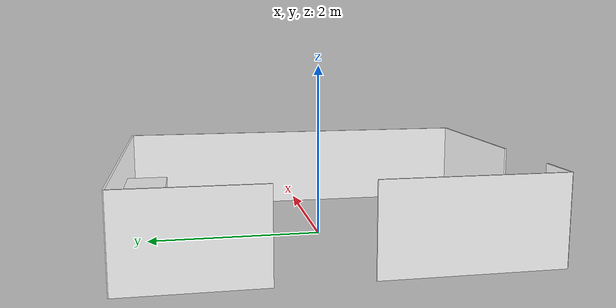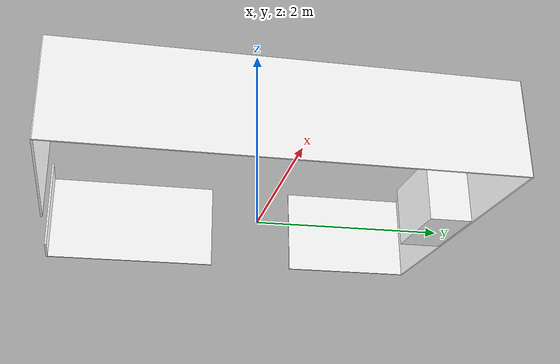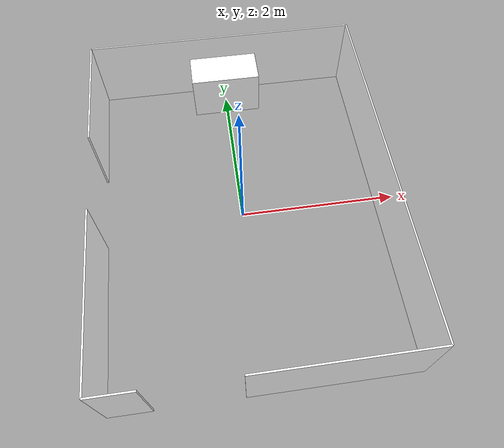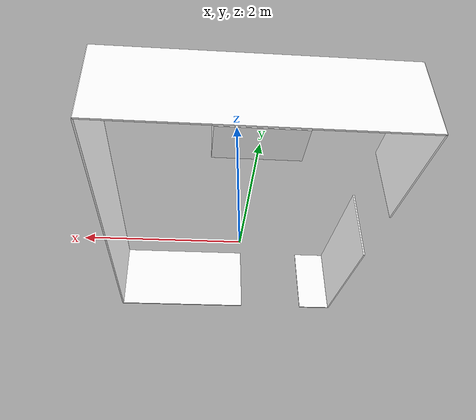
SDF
<sdf version="1.6">
    <model name="dining_room">
        <static>true</static>
        <!-- East wall -->
        <link name="east_wall">
            <pose>1.75 0 0.5 0 0 0</pose>
            <visual name="visual_east_wall">
                <geometry>
                    <box>
                        <size>0.02 4.5 1.0</size>
                    </box>
                </geometry>
                <material>
                    <ambient>1 1 1 1</ambient> <!-- White color, fully opaque -->
                </material>
            </visual>
            <collision name="collision_east_wall">
                <geometry>
                    <box>
                        <size>0.02 4.5 1.0</size>
                    </box>
                </geometry>
            </collision>
        </link>

        <!-- North wall -->
        <link name="north_wall">
            <pose>0 2.25 0.5 0 0 0</pose>
            <visual name="visual_north_wall">
                <geometry>
                    <box>
                        <size>3.5 0.02 1.0</size>
                    </box>
                </geometry>
                <material>
                    <ambient>1 1 1 1</ambient>
                </material>
            </visual>
            <collision name="collision_north_wall">
                <geometry>
                    <box>
                        <size>3.5 0.02 1.0</size>
                    </box>
                </geometry>
            </collision>
        </link>

        <!-- South wall 1 -->
        <link name="south_wall_1">
            <pose>0.75 -2.25 0.5 0 0 0</pose>
            <visual name="visual_south_wall_1">
                <geometry>
                    <box>
                        <size>2.0 0.02 1.0</size>
                    </box>
                </geometry>
                <material>
                    <ambient>1 1 1 1</ambient>
                </material>
            </visual>
            <collision name="collision_south_wall_1">
                <geometry>
                    <box>
                        <size>2.0 0.02 1.0</size>
                    </box>
                </geometry>
            </collision>
        </link>

        <!-- South wall 2 -->
        <link name="south_wall_2">
            <pose>-1.5 -2.25 0.5 0 0 0</pose>
            <visual name="visual_south_wall_2">
                <geometry>
                    <box>
                        <size>0.5 0.02 1.0</size>
                    </box>
                </geometry>
                <material>
                    <ambient>1 1 1 1</ambient>
                </material>
            </visual>
            <collision name="collision_south_wall_2">
                <geometry>
                    <box>
                        <size>0.5 0.02 1.0</size>
                    </box>
                </geometry>
            </collision>
        </link>

        <!-- West wall 1 -->
        <link name="west_wall_1">
            <pose>-1.75 1.5 0.5 0 0 0</pose>
            <visual name="visual_west_wall_1">
                <geometry>
                    <box>
                        <size>0.02 1.5 1.0</size>
                    </box>
                </geometry>
                <material>
                    <ambient>1 1 1 1</ambient>
                </material>
            </visual>
            <collision name="collision_west_wall_1">
                <geometry>
                    <box>
                        <size>0.02 1.5 1.0</size>
                    </box>
                </geometry>
            </collision>
        </link>

        <!-- West wall 2 -->
        <link name="west_wall_2">
            <pose>-1.75 -1.25 0.5 0 0 0</pose>
            <visual name="visual_west_wall_2">
                <geometry>
                    <box>
                        <size>0.02 2.0 1.0</size>
                    </box>
                </geometry>
                <material>
                    <ambient>1 1 1 1</ambient>
                </material>
            </visual>
            <collision name="collision_west_wall_2">
                <geometry>
                    <box>
                        <size>0.02 2.0 1.0</size>
                    </box>
                </geometry>
            </collision>
        </link>

        <!-- Furniture -->

        <include>
            <uri>model://ar_ss26/furniture/storage_table</uri>
            <pose>0 2.0 0.0 0 0 0</pose>
            <static>true</static>
        </include>
    </model>
</sdf>

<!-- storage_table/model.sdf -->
<sdf version="1.6">
    <model name="storage_table">
        <static>true</static>
        <!-- Body of the storage table -->
        <link name="body">
            <pose>0 0 0.33 0 0 0</pose>
            <visual name="visual_body">
                <geometry>
                    <box>
                        <size>0.92 0.46 0.66</size>
                    </box>
                </geometry>
                <material>
                    <ambient>1 1 1 1</ambient> <!-- White color, fully opaque -->
                </material>
            </visual>
            <collision name="collision_body">
                <geometry>
                    <box>
                        <size>0.92 0.46 0.66</size>
                    </box>
                </geometry>
            </collision>
        </link>
    </model>
</sdf>
